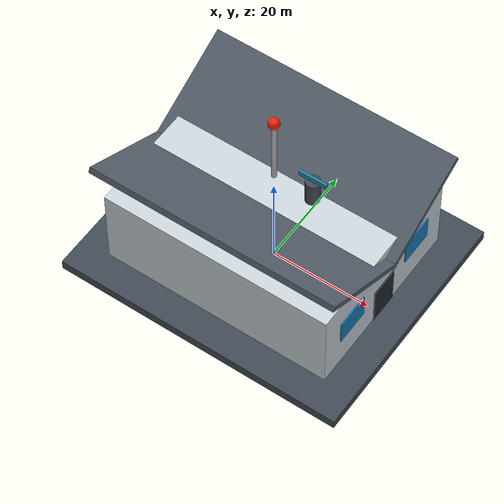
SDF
<?xml version="1.0"?>
<sdf version="1.10">
  <model name="offshore_command_base">
    <static>true</static>
    <link name="building">
      <collision name="foundation_collision"><pose>0 0 1.0 0 0 0</pose><geometry><box><size>58 48 2</size></box></geometry></collision>
      <collision name="house_collision"><pose>0 0 10 0 0 0</pose><geometry><box><size>46 36 18</size></box></geometry></collision>
      <visual name="foundation"><pose>0 0 1.0 0 0 0</pose><geometry><box><size>58 48 2</size></box></geometry><material><ambient>0.12 0.14 0.16 1</ambient><diffuse>0.24 0.28 0.32 1</diffuse></material></visual>
      <visual name="house"><pose>0 0 10 0 0 0</pose><geometry><box><size>46 36 18</size></box></geometry><material><ambient>0.56 0.60 0.62 1</ambient><diffuse>0.78 0.82 0.84 1</diffuse><specular>0.2 0.2 0.2 1</specular></material></visual>
      <visual name="roof_left"><pose>0 9.1 21.2 0.48 0 0</pose><geometry><box><size>50 22 1.1</size></box></geometry><material><ambient>0.18 0.20 0.23 1</ambient><diffuse>0.32 0.36 0.40 1</diffuse></material></visual>
      <visual name="roof_right"><pose>0 -9.1 21.2 -0.48 0 0</pose><geometry><box><size>50 22 1.1</size></box></geometry><material><ambient>0.18 0.20 0.23 1</ambient><diffuse>0.32 0.36 0.40 1</diffuse></material></visual>
      <visual name="door"><pose>23.05 0 5.5 0 0 0</pose><geometry><box><size>0.25 6 9</size></box></geometry><material><ambient>0.08 0.10 0.12 1</ambient><diffuse>0.12 0.16 0.20 1</diffuse></material></visual>
      <visual name="window_1"><pose>23.1 10 11 0 0 0</pose><geometry><box><size>0.3 7 5</size></box></geometry><material><ambient>0.05 0.30 0.48 1</ambient><diffuse>0.10 0.48 0.72 1</diffuse><emissive>0.02 0.12 0.20 1</emissive></material></visual>
      <visual name="window_2"><pose>23.1 -10 11 0 0 0</pose><geometry><box><size>0.3 7 5</size></box></geometry><material><ambient>0.05 0.30 0.48 1</ambient><diffuse>0.10 0.48 0.72 1</diffuse><emissive>0.02 0.12 0.20 1</emissive></material></visual>
      <visual name="antenna"><pose>0 0 30 0 0 0</pose><geometry><cylinder><radius>0.5</radius><length>14</length></cylinder></geometry><material><ambient>0.35 0.36 0.38 1</ambient><diffuse>0.65 0.66 0.68 1</diffuse></material></visual>
      <visual name="beacon"><pose>0 0 37.3 0 0 0</pose><geometry><sphere><radius>1.1</radius></sphere></geometry><material><ambient>0.9 0.08 0.04 1</ambient><diffuse>1 0.12 0.06 1</diffuse><emissive>0.8 0.03 0.01 1</emissive></material></visual>
      <visual name="radar_pedestal"><pose>8 0 25 0 0 0</pose><geometry><cylinder><radius>1.4</radius><length>5</length></cylinder></geometry><material><ambient>0.12 0.14 0.16 1</ambient><diffuse>0.24 0.28 0.32 1</diffuse></material></visual>
      <visual name="radar_head"><pose>8 0 28 0 0 0</pose><geometry><box><size>5.5 0.5 1.1</size></box></geometry><material><ambient>0.08 0.22 0.28 1</ambient><diffuse>0.12 0.52 0.64 1</diffuse><emissive>0.02 0.12 0.16 1</emissive></material></visual>
      <sensor name="base_radar" type="gpu_lidar">
        <pose>8 0 28 0 0 0</pose>
        <topic>/base/radar/scan</topic>
        <update_rate>10</update_rate>
        <ray>
          <scan><horizontal><samples>720</samples><resolution>1</resolution><min_angle>-3.1415926</min_angle><max_angle>3.1415926</max_angle></horizontal></scan>
          <range><min>3</min><max>700</max><resolution>0.2</resolution></range>
          <noise><type>gaussian</type><mean>0</mean><stddev>0.03</stddev></noise>
        </ray>
        <always_on>true</always_on>
        <visualize>true</visualize>
      </sensor>
      <light name="base_beacon" type="point"><pose>0 0 37.3 0 0 0</pose><cast_shadows>false</cast_shadows><intensity>2</intensity><diffuse>1 0.16 0.08 1</diffuse><attenuation><range>100</range><constant>0.5</constant><linear>0.02</linear><quadratic>0.001</quadratic></attenuation></light>
    </link>
  </model>
</sdf>
